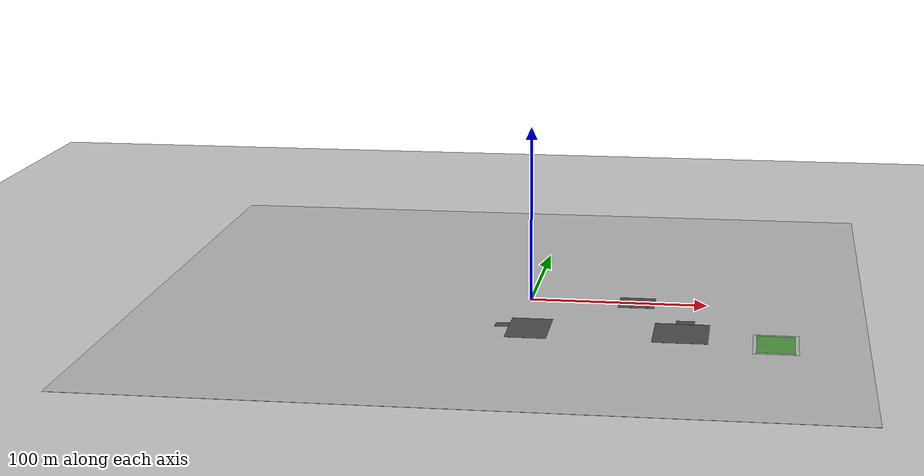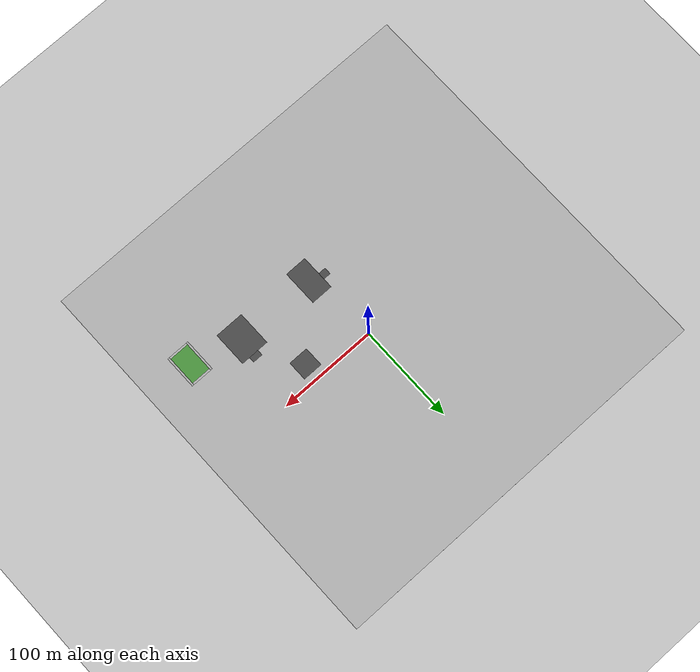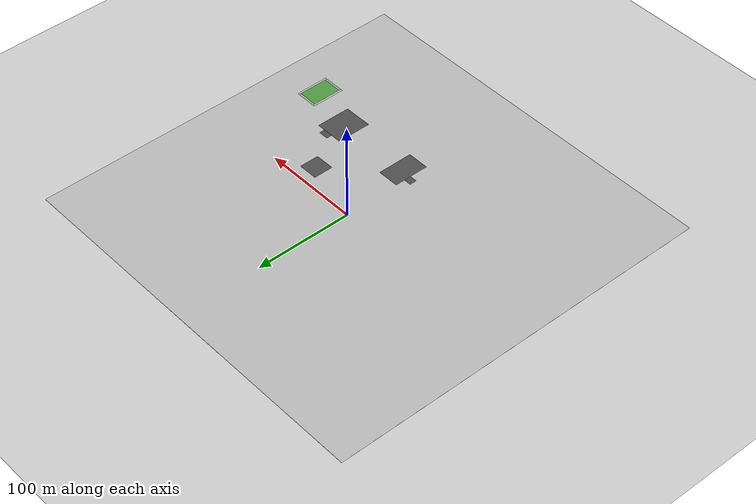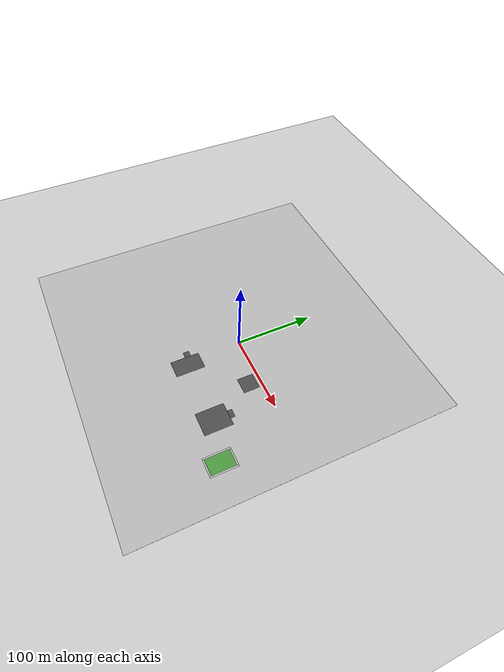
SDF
<sdf version="1.6">
 <world name="default">
  <scene>
   <grid>0</grid>
   <origin_visual>0</origin_visual>
   <ambient>0.592 0.624 0.635 1</ambient>
   <sky><clouds><speed>12</speed></clouds></sky>
   <background>0.35 0.35 0.35 1</background>
   <shadows>1</shadows>
  </scene>
  <physics name="default_physics" default="0" type="ode">
   <ode>
    <solver>
     <type>quick</type>
     <iters>10</iters>
     <sor>1.3</sor>
     <use_dynamic_moi_rescaling>0</use_dynamic_moi_rescaling>
    </solver>
    <constraints>
     <cfm>0</cfm>
     <erp>0.2</erp>
     <contact_max_correcting_vel>100</contact_max_correcting_vel>
     <contact_surface_layer>0.001</contact_surface_layer>
    </constraints>
   </ode>
   <max_step_size>0.004</max_step_size>
   <real_time_factor>1</real_time_factor>
   <real_time_update_rate>250</real_time_update_rate>
  </physics>
  <spherical_coordinates>
   <surface_model>EARTH_WGS84</surface_model>
   <latitude_deg>0</latitude_deg>
   <longitude_deg>0</longitude_deg>
   <elevation>0</elevation>
   <heading_deg>0</heading_deg>
  </spherical_coordinates>
  <light name="sun" type="directional">
   <pose>0 0 1000 0 -0 0</pose>
   <diffuse>0.8 0.8 0.8 1</diffuse>
   <specular>0.5 0.5 0.5 1</specular>
   <attenuation>
    <range>1000</range>
    <constant>0.9</constant>
    <linear>0.01</linear>
    <quadratic>0.001</quadratic>
   </attenuation>
   <direction>-0.5 0.1 -0.4</direction>
  </light>
  <model name="shaderbox">
   <pose>0 0 -5 0 -0 0</pose>
   <static>1</static>
   <link name="link">
    <visual name="visual">
     <geometry><box><size>0.1 0.1 0.1</size></box></geometry>
     <material>
      <script><uri>file://media/materials/scripts/citysim.material</uri><name>CitySim/ShinyGrey</name></script>
     </material>
     <plugin name="bloom" filename="libBloomVisualPlugin.so"/>
     <plugin name="lensflare" filename="libLensFlareVisualPlugin.so"/>
    </visual>
   </link>
  </model>
  <model name="ground_plane">
   <static>1</static>
   <link name="link">
    <collision name="collision">
     <geometry><plane><normal>0 0 1</normal><size>100 100</size></plane></geometry>
     <surface><friction><ode><mu>100</mu><mu2>50</mu2></ode></friction></surface>
    </collision>
    <visual name="visual">
     <cast_shadows>0</cast_shadows>
     <geometry><plane><normal>0 0 1</normal><size>100 100</size></plane></geometry>
     <material>
      <script><uri>file://media/materials/scripts/gazebo.material</uri><name>Gazebo/Grey</name></script>
     </material>
    </visual>
   </link>
   <pose>0 0 4.95 0 -0 0</pose>
  </model>
  <model name="irlock_beacon">
   <pose>-72.9256 105.66 5.07403 0 0.017343 0</pose>
   <link name="link">
    <inertial>
     <mass>10</mass>
     <inertia><ixx>0.01</ixx><ixy>0</ixy><ixz>0</ixz><iyy>0.01</iyy><iyz>0</iyz><izz>0.01</izz></inertia>
    </inertial>
    <collision name="collision">
     <geometry><box><size>0.1 0.1 0.01</size></box></geometry>
     <surface>
      <friction><ode><mu>1</mu><mu2>1</mu2><fdir1>1 0 0</fdir1></ode></friction>
      <contact><ode><kp>1e+12</kp><kd>1</kd><max_vel>10</max_vel><min_depth>0.003</min_depth></ode></contact>
     </surface>
    </collision>
    <visual name="visual">
     <geometry><box><size>0.1 0.1 0.02</size></box></geometry>
     <material><script><name>Gazebo/Green</name><uri>__default__</uri></script></material>
    </visual>
   </link>
  </model>
  <model name="lawn_plane">
   <static>1</static>
   <link name="link">
    <collision name="collision"><geometry><box><size>400 400 0.1</size></box></geometry></collision>
    <visual name="visual">
     <cast_shadows>0</cast_shadows>
     <geometry><box><size>400 400 0.1</size></box></geometry>
     <material>
      <script>
       <uri>model://lawn_plane/materials/scripts</uri>
       <uri>model://lawn_plane/materials/textures</uri>
       <name>vrc/lawn</name>
      </script>
     </material>
    </visual>
   </link>
   <pose>-13.1345 -9.47664 4.95 0 -0 0</pose>
  </model>
  <model name="robocup_3Dsim_field_90">
   <static>1</static>
   <link name="field">
    <pose>0 0 0.01 0 -0 0</pose>
    <collision name="collision">
     <geometry><plane><normal>0 0 1</normal><size>30 20</size></plane></geometry>
     <surface><friction><ode><mu>100</mu><mu2>50</mu2></ode></friction></surface>
    </collision>
    <visual name="base1">
     <pose>0 11 0.001 0 -0 0</pose>
     <cast_shadows>0</cast_shadows>
     <geometry><plane><normal>0 0 1</normal><size>34 2</size></plane></geometry>
     <material>
      <script>
       <uri>model://robocup_3Dsim_field/materials/scripts/</uri>
       <uri>model://robocup_3Dsim_field/materials/textures/</uri>
       <name>RoboCup/FieldBorder</name>
      </script>
     </material>
    </visual>
    <visual name="base2">
     <pose>0 -11 0.001 0 -0 0</pose>
     <cast_shadows>0</cast_shadows>
     <geometry><plane><normal>0 0 1</normal><size>34 2</size></plane></geometry>
     <material>
      <script>
       <uri>model://robocup_3Dsim_field/materials/scripts/</uri>
       <uri>model://robocup_3Dsim_field/materials/textures/</uri>
       <name>RoboCup/FieldBorder</name>
      </script>
     </material>
    </visual>
    <visual name="base3">
     <pose>16 0 0.001 0 -0 0</pose>
     <cast_shadows>0</cast_shadows>
     <geometry><plane><normal>0 0 1</normal><size>2 20</size></plane></geometry>
     <material>
      <script>
       <uri>model://robocup_3Dsim_field/materials/scripts/</uri>
       <uri>model://robocup_3Dsim_field/materials/textures/</uri>
       <name>RoboCup/FieldBorder</name>
      </script>
     </material>
    </visual>
    <visual name="base4">
     <pose>-16 0 0.001 0 -0 0</pose>
     <cast_shadows>0</cast_shadows>
     <geometry><plane><normal>0 0 1</normal><size>2 20</size></plane></geometry>
     <material>
      <script>
       <uri>model://robocup_3Dsim_field/materials/scripts/</uri>
       <uri>model://robocup_3Dsim_field/materials/textures/</uri>
       <name>RoboCup/FieldBorder</name>
      </script>
     </material>
    </visual>
    <visual name="carpet">
     <cast_shadows>0</cast_shadows>
     <geometry><plane><normal>0 0 1</normal><size>30 20</size></plane></geometry>
     <material>
      <script>
       <uri>model://robocup_3Dsim_field/materials/scripts/</uri>
       <uri>model://robocup_3Dsim_field/materials/textures/</uri>
       <name>RoboCup/Grass</name>
      </script>
     </material>
    </visual>
   </link>
   <pose>138.5 -86.6 5.06 0 -0 1.57</pose>
  </model>
  <model name="asphalt_plane_138">
   <static>1</static>
   <pose>61.581 -16.664 5.01 0 -0 0</pose>
   <link name="link">
    <collision name="collision"><geometry><box><size>20 20 0.1</size></box></geometry></collision>
    <visual name="visual">
     <geometry><box><size>20 20 0.05</size></box></geometry>
     <material>
      <script>
       <uri>model://asphalt_plane/materials/scripts</uri>
       <uri>model://asphalt_plane/materials/textures</uri>
       <name>vrc/asphalt</name>
      </script>
     </material>
    </visual>
   </link>
  </model>
  <model name="asphalt_plane_148">
   <static>1</static>
   <pose>88.62 -72.49 5.01 0 -0 0</pose>
   <link name="link">
    <collision name="collision"><geometry><box><size>29.378 35.24 0.1</size></box></geometry></collision>
    <visual name="visual">
     <geometry><box><size>29.378 35.24 0.05</size></box></geometry>
     <material>
      <script>
       <uri>model://asphalt_plane/materials/scripts</uri>
       <uri>model://asphalt_plane/materials/textures</uri>
       <name>vrc/asphalt</name>
      </script>
     </material>
    </visual>
   </link>
  </model>
  <model name="asphalt_plane_149">
   <static>1</static>
   <pose>90 -52.48 5.01 0 -0 0</pose>
   <link name="link">
    <collision name="collision"><geometry><box><size>10.15 6.61 0.1</size></box></geometry></collision>
    <visual name="visual">
     <geometry><box><size>10.15 6.61 0.05</size></box></geometry>
     <material>
      <script>
       <uri>model://asphalt_plane/materials/scripts</uri>
       <uri>model://asphalt_plane/materials/textures</uri>
       <name>vrc/asphalt</name>
      </script>
     </material>
    </visual>
   </link>
  </model>
  <model name="asphalt_plane_321">
   <static>1</static>
   <pose>7.4 -72.69 5.01 0 -0 0</pose>
   <link name="link">
    <collision name="collision"><geometry><box><size>22.248 36.24 0.1</size></box></geometry></collision>
    <visual name="visual">
     <geometry><box><size>22.248 36.24 0.05</size></box></geometry>
     <material>
      <script>
       <uri>model://asphalt_plane/materials/scripts</uri>
       <uri>model://asphalt_plane/materials/textures</uri>
       <name>vrc/asphalt</name>
      </script>
     </material>
    </visual>
   </link>
  </model>
  <model name="asphalt_plane_322">
   <static>1</static>
   <pose>-7.51 -67.99 5.01 0 -0 0</pose>
   <link name="link">
    <collision name="collision"><geometry><box><size>7.63 7.24 0.1</size></box></geometry></collision>
    <visual name="visual">
     <geometry><box><size>7.63 7.24 0.05</size></box></geometry>
     <material>
      <script>
       <uri>model://asphalt_plane/materials/scripts</uri>
       <uri>model://asphalt_plane/materials/textures</uri>
       <name>vrc/asphalt</name>
      </script>
     </material>
    </visual>
   </link>
  </model>
  <gravity>0 0 -9.8</gravity>
  <magnetic_field>6e-06 2.3e-05 -4.2e-05</magnetic_field>
  <atmosphere type="adiabatic"/>
 </world>
</sdf>
